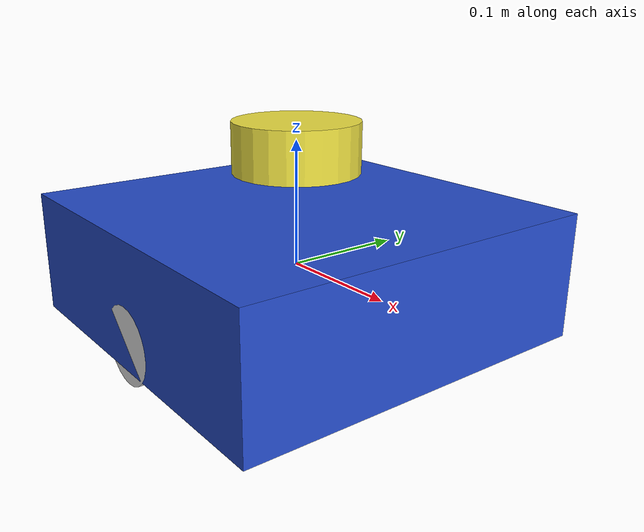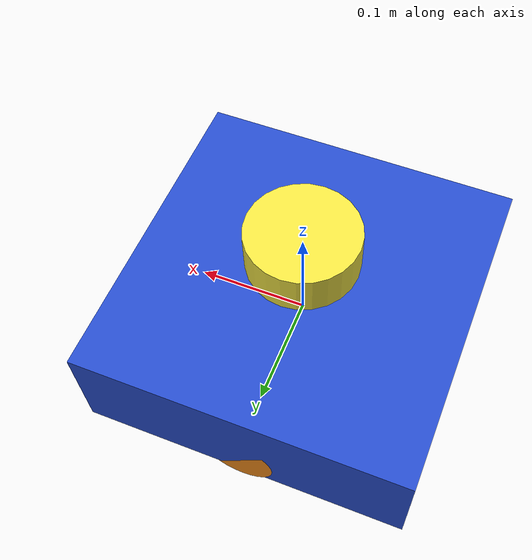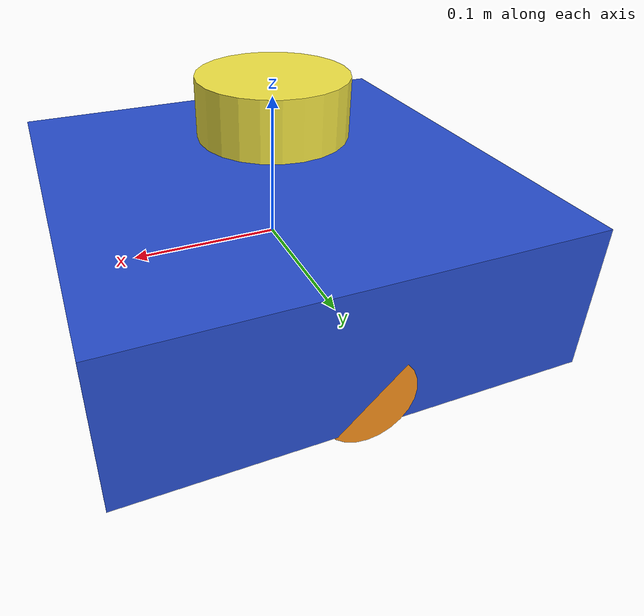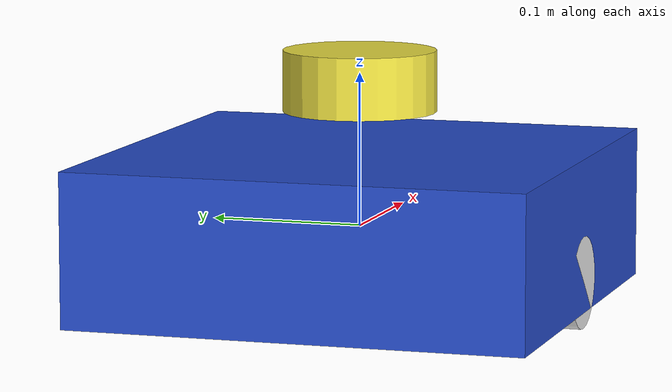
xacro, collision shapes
<?xml version="1.0" ?>
<robot name="rebot" xmlns:xacro="https://www.ros.org/wiki/xacro" >

  <!-- include the xacro files-->
  <xacro:include filename="$(find rebot_description)/urdf/materials.xacro" />
  <xacro:include filename="$(find rebot_description)/urdf/rebot.gazebo" />
  <xacro:include filename="$(find rebot_description)/urdf/macro.xacro" />

  <!-- Chasis defined here -->
  <link name="link_chassis">
    <pose>0 0 0.1 0 0 0</pose>
    <inertial>
      <mass value="1"/>
      <origin rpy="0 0 0" xyz="0 0 0.1"/>
      <inertia ixx="0.0395416666667" ixy="0" ixz="0" iyy="0.106208333333" iyz="0" izz="0.106208333333"/>
    </inertial>

    <collision name="collision_chassis">
      <geometry>
        <box size="0.3 0.3 0.1"/>
      </geometry>
    </collision>

    <visual>
      <origin rpy="1.57 0 0" xyz="-0.15 -1.064 -0.642"/>
      <geometry>
        <!--box size="0.3 0.3 0.1"/-->
        <mesh filename="package://rebot_description/meshes/Rebot.dae" scale="0.0011 0.0011 0.0011"/>
      </geometry>
      <material name="blue"/>
    </visual>

    <!-- caster front right -->
    <collision name="caster_front_right_collision">
      <origin rpy=" 0 0 0" xyz="0.08 -0.08 -0.05"/>
      <geometry>
        <sphere radius="0.01"/>
      </geometry>
      <surface>
        <friction>
          <ode>
            <mu>0</mu>
            <mu2>0</mu2>
            <slip1>1.0</slip1>
            <slip2>1.0</slip2>
          </ode>
        </friction>
      </surface>
    </collision>
    <visual name="caster_front_right_visual">
      <origin rpy=" 0 0 0" xyz="0.08 -0.08 -0.05"/>
      <geometry>
        <sphere radius="0.01"/>
      </geometry>
    </visual>

    <!-- caster front left-->
    <collision name="caster_front_left_collision">
      <origin rpy=" 0 0 0" xyz="0.08 0.08 -0.05"/>
      <geometry>
        <sphere radius="0.01"/>
      </geometry>
      <surface>
        <friction>
          <ode>
            <mu>0</mu>
            <mu2>0</mu2>
            <slip1>1.0</slip1>
            <slip2>1.0</slip2>
          </ode>
        </friction>
      </surface>
    </collision>
    <visual name="caster_front_left_visual">
      <origin rpy=" 0 0 0" xyz="0.08 0.08 -0.05"/>
      <geometry>
        <sphere radius="0.01"/>
      </geometry>
    </visual>

    <!-- caster back right -->
    <collision name="caster_back_right_collision">
      <origin rpy=" 0 0 0" xyz="-0.08 -0.08 -0.05"/>
      <geometry>
        <sphere radius="0.01"/>
      </geometry>
      <surface>
        <friction>
          <ode>
            <mu>0</mu>
            <mu2>0</mu2>
            <slip1>1.0</slip1>
            <slip2>1.0</slip2>
          </ode>
        </friction>
      </surface>
    </collision>
    <visual name="caster_back_right_visual">
      <origin rpy=" 0 0 0" xyz="-0.08 -0.08 -0.05"/>
      <geometry>
        <sphere radius="0.01"/>
      </geometry>
    </visual>

    <!-- caster back left -->
    <collision name="caster_back_left_collision">
      <origin rpy=" 0 0 0" xyz="-0.08 0.08 -0.05"/>
      <geometry>
        <sphere radius="0.01"/>
      </geometry>
      <surface>
        <friction>
          <ode>
            <mu>0</mu>
            <mu2>0</mu2>
            <slip1>1.0</slip1>
            <slip2>1.0</slip2>
          </ode>
        </friction>
      </surface>
    </collision>
    <visual name="caster_back_left_visual">
      <origin rpy=" 0 0 0" xyz="-0.08 0.08 -0.05"/>
      <geometry>
        <sphere radius="0.01"/>
      </geometry>
    </visual>
    </link>

  <!-- Create wheel right -->
   <xacro:link_wheel name="link_right_wheel" />
   <xacro:joint_wheel name="joint_right_wheel"  child="link_right_wheel"  origin_xyz="0 0.13 -0.03"  />

  <!-- Create Wheel left -->
  <xacro:link_wheel name="link_left_wheel" />
  <xacro:joint_wheel name="joint_left_wheel"   child="link_left_wheel"   origin_xyz="0 -0.13 -0.03"  />

 <link name="sensor_laser">
    <xacro:cylinder_inertia mass="1" r="0.05" l="0.1" />

    <collision>
      <origin xyz="0 0 0" rpy="0 0 0"/>
      <geometry>
        <cylinder radius="0.05" length="0.04"/>
      </geometry>
    </collision>
  </link>

  <joint name="joint_sensor_laser" type="fixed">
    <origin xyz="0 0 0.095" rpy="0 0 0"/><!-- height of laser -->
    <parent link="link_chassis"/>
    <child link="sensor_laser"/>
  </joint>

</robot>

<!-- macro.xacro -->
<robot xmlns:xacro="http://www.ros.org/wiki/xacro">
    <xacro:macro name="link_wheel" params="name">
        <link name="${name}">
            <inertial>
              <mass value="0.2"/>
              <origin rpy="0 1.5707 1.5707" xyz="0 0 0"/>
              <inertia ixx="0.000526666666667" ixy="0" ixz="0" iyy="0.000526666666667" iyz="0" izz="0.001"/>
            </inertial>
            <collision name="link_right_wheel_collision">
              <origin rpy="0 1.5707 1.5707" xyz="0 0 0"/>
              <geometry>
                <cylinder length="0.04" radius="0.03"/>
              </geometry>
            </collision>
            <visual name="${name}_visual">
              <origin rpy="0 1.5707 1.5707" xyz="0 0 0"/>
              <geometry>
                <cylinder length="0.04" radius="0.03"/>
              </geometry>
            </visual>
        </link>
    </xacro:macro>

    <xacro:macro name="joint_wheel" params="name child origin_xyz">
      <joint name="${name}" type="continuous">
        <origin rpy="0 0 0" xyz="${origin_xyz}"/>
        <child link="${child}"/>
        <parent link="link_chassis"/>
        <axis rpy="0 0 0" xyz="0 1 0"/>
        <limit effort="10000" velocity="1000"/>
        <joint_properties damping="1.0" friction="1.0"/>
      </joint>
    </xacro:macro>

    <xacro:macro name="cylinder_inertia" params="mass r l">
        <inertia ixx="${mass*(3*r*r+l*l)/12}" ixy = "0" ixz = "0"
                iyy="${mass*(3*r*r+l*l)/12}" iyz = "0" izz="${mass*(r*r)/2}" />
    </xacro:macro>

</robot>
